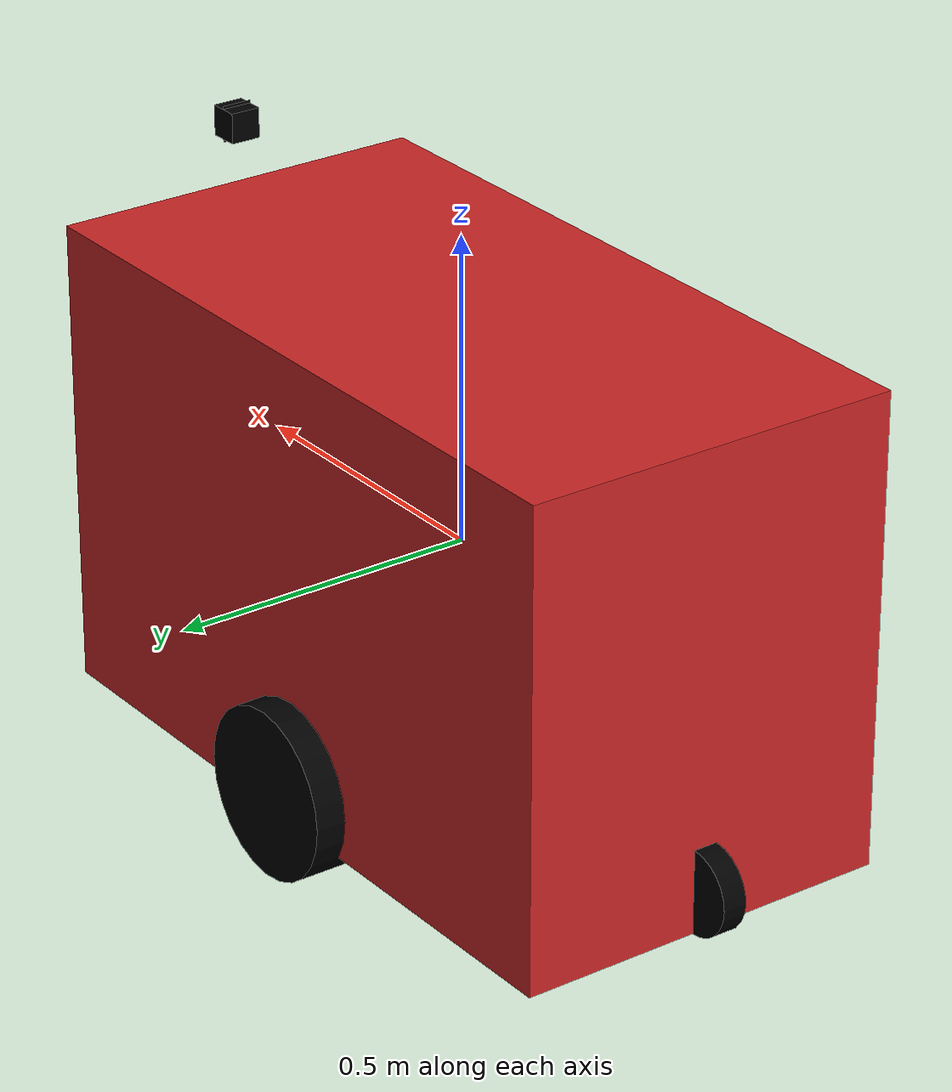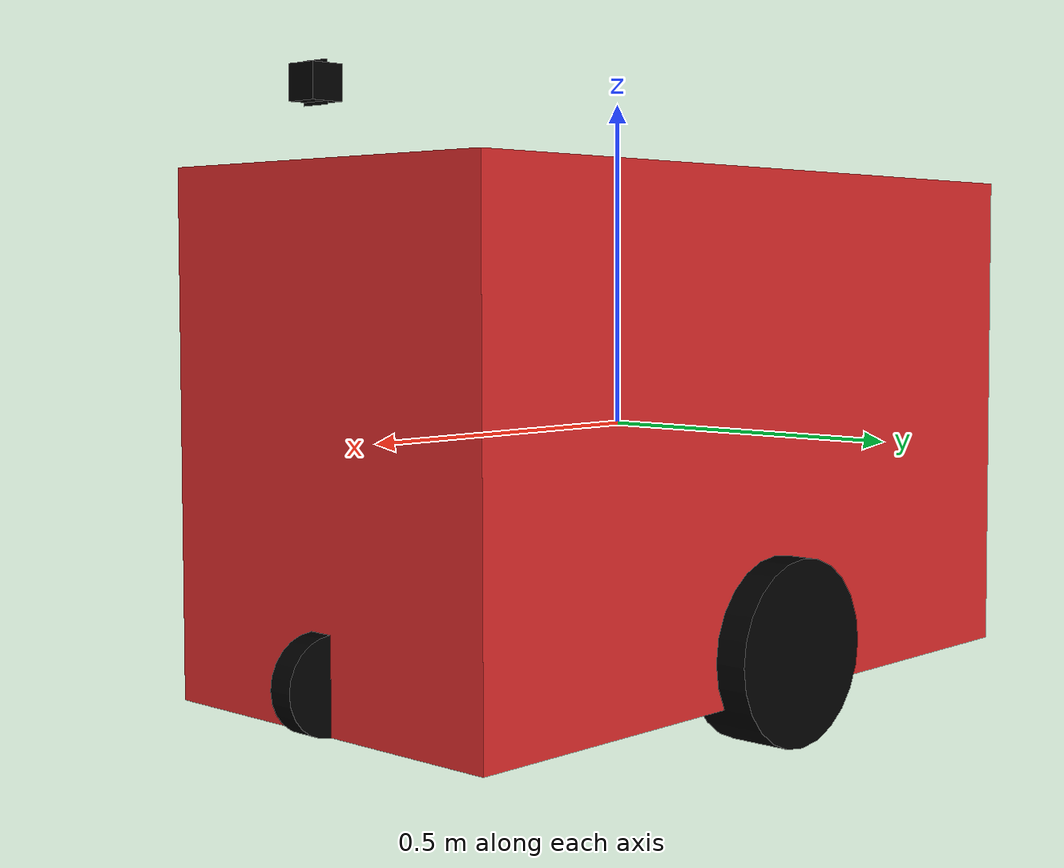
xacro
<?xml version="1.0"?>
<robot name="robobox" xmlns:xacro="http://www.ros.org/wiki/xacro">

    <xacro:property name="width" value="0.63" />
    <xacro:property name="length" value="1.2" />
    <xacro:property name="height" value="0.778" />
    <xacro:property name="pi" value="3.1415" />
    <xacro:property name="small_wheel_radius" value="0.07" />
    <xacro:property name="small_wheel_length" value="0.04" />
    <xacro:property name="big_wheel_radius" value="0.14" />
    <xacro:property name="big_wheel_length" value="0.1" />
    <xacro:property name="camera_size" value="0.05" />

    <material name="black">
        <color rgba="0 0 0 1" />
    </material>

    <xacro:macro name="default_inertial" params="mass">
        <inertial>
            <mass value="${mass}" />
            <origin xyz=" 0 0 0"/>
            <inertia ixx="1.0" ixy="0.0" ixz="0.0" iyy="1.0" iyz="0.0" izz="1.0" />
        </inertial>
    </xacro:macro>

    <xacro:macro name="wheel" params="prefix suffix ratio_x ratio_y offset_z wheel_radius wheel_length joint_type">
        <link name="${prefix}_${suffix}_wheel">
            <visual>
                <origin xyz="0 0 0" rpy="0 ${pi/2} ${pi/2}" />
                <geometry>
                    <cylinder radius="${wheel_radius}" length="${wheel_length}" />
                </geometry>
                <material name="black" />
            </visual>
            <collision>
                <origin xyz="0 0 0" rpy="0 ${pi/2} ${pi/2}" />
                <geometry>
                    <cylinder radius="${wheel_radius}" length="${wheel_length}" />
                </geometry>
            </collision>
            <xacro:default_inertial mass="0.01" />
        </link>
        <joint name="${prefix}_${suffix}_wheel_joint" type="${joint_type}">
            <axis xyz="0 1 0" />
            <parent link="base_link" />
            <child link="${prefix}_${suffix}_wheel" />
            <origin xyz="${length * ratio_x} ${width * ratio_y} -${height/2 + offset_z}" rpy="0 0 0" />
        </joint>
    </xacro:macro>

    <xacro:macro name="small_wheel" params="prefix suffix ratio_x">
        <xacro:wheel prefix="${prefix}" suffix="${suffix}" ratio_x="${ratio_x}" ratio_y="0" offset_z="-${small_wheel_radius}" wheel_radius="${small_wheel_radius}" wheel_length="${small_wheel_length}" joint_type="fixed"/>
    </xacro:macro>

    <xacro:macro name="big_wheel" params="prefix suffix ratio_y">
        <xacro:wheel prefix="${prefix}" suffix="${suffix}" ratio_x="0" ratio_y="${ratio_y}" offset_z="-${big_wheel_radius / 2}" wheel_radius="${big_wheel_radius}" wheel_length="${big_wheel_length}" joint_type="continuous"/>
    </xacro:macro>

    <link name="base_link">
        <visual>
            <geometry>
                <box size="${length} ${width} ${height}" />
            </geometry>
        </visual>
        <collision>
            <geometry>
                <box size="${length} ${width} ${height}" />
            </geometry>
        </collision>
        <xacro:default_inertial mass="100" />
        <gazebo reference="base_link">
            <material>Gazebo/Red</material>
        </gazebo>
    </link>

    <link name="base_footprint">
        <visual>
          <geometry>
             <box size="0.001 0.001 0.001"/>
          </geometry>
          <origin rpy="0 0 0" xyz="0 0 0"/>
        </visual>
        <inertial>
          <mass value="0.0001"/>
          <inertia ixx="1.0" ixy="0.0" ixz="0.0" iyy="1.0" iyz="0.0" izz="1.0"/>
        </inertial>
    </link>
    <gazebo reference="base_footprint">
        <material>Gazebo/Blue</material>
    </gazebo>
    <joint name="base_footprint_joint" type="fixed">
        <origin xyz="0 0 0" />
        <parent link="base_footprint" />
        <child link="base_link" />
    </joint>

    <xacro:small_wheel prefix="front" suffix="mid" ratio_x="0.5" />
    <xacro:small_wheel prefix="back" suffix="mid" ratio_x="-0.5" />

    <xacro:big_wheel prefix="mid" suffix="left" ratio_y="0.5" />
    <xacro:big_wheel prefix="mid" suffix="right" ratio_y="-0.5" />

  <!-- Camera -->
  <joint name="camera_joint" type="fixed">
    <axis xyz="0 1 0" />
    <origin xyz="${length/2} 0 ${height/2 + 0.1}" rpy="0 0 0"/>
    <parent link="base_link"/>
    <child link="camera_link"/>
  </joint>

  <link name="camera_link">
    <collision>
      <origin xyz="0 0 0" rpy="0 0 0"/>
      <geometry>
    <box size="${camera_size} ${camera_size} ${camera_size}"/>
      </geometry>
    </collision>

    <visual>
      <origin xyz="0 0 0" rpy="0 0 0"/>
      <geometry>
         <box size="${camera_size} ${camera_size} ${camera_size}"/>
      </geometry>
      <material name="black"/>
    </visual>

    <inertial>
      <mass value="1e-5" />
      <origin xyz="0 0 0" rpy="0 0 0"/>
      <inertia ixx="1e-6" ixy="0" ixz="0" iyy="1e-6" iyz="0" izz="1e-6" />
    </inertial>
  </link>

  <gazebo reference="camera_link">
    <sensor type="camera" name="front_camera">
      <update_rate>30.0</update_rate>
      <camera name="head">
        <horizontal_fov>1.3962634</horizontal_fov>
        <image>
          <width>800</width>
          <height>800</height>
          <format>R8G8B8</format>
        </image>
        <clip>
          <near>0.02</near>
          <far>300</far>
        </clip>
        <noise>
          <type>gaussian</type>
          <mean>0.0</mean>
          <stddev>0.007</stddev>
        </noise>
      </camera>
      <plugin name="camera_controller" filename="libgazebo_ros_camera.so">
        <alwaysOn>true</alwaysOn>
        <updateRate>0.0</updateRate>
        <cameraName>robobox/front_camera</cameraName>
        <imageTopicName>image_raw</imageTopicName>
        <cameraInfoTopicName>camera_info</cameraInfoTopicName>
        <frameName>camera_link</frameName>
        <hackBaseline>0.07</hackBaseline>
        <distortionK1>0.0</distortionK1>
        <distortionK2>0.0</distortionK2>
        <distortionK3>0.0</distortionK3>
        <distortionT1>0.0</distortionT1>
        <distortionT2>0.0</distortionT2>
      </plugin>
    </sensor>
  </gazebo>

<!-- Hokuyo LIDAR for simulation -->
  <xacro:macro name="hokuyo_laser">
    <gazebo reference="base_laser_link">
      <sensor type="ray" name="laser">
        <pose>0 0 0 0 0 0</pose>
        <visualize>true</visualize>
        <update_rate>40</update_rate>
        <ray>
          <scan>
            <horizontal>
              <samples>720</samples>
              <resolution>1</resolution>
              <min_angle>-3.1415</min_angle>
              <max_angle>3.1415</max_angle>
            </horizontal>
          </scan>
          <range>
            <min>0.10</min>
            <max>30.0</max>
            <resolution>0.01</resolution>
          </range>
          <noise>
            <type>Gaussian</type>
            <mean>0.0</mean>
            <stddev>0.01</stddev>
          </noise>
        </ray>
        <plugin name="hokuyo_node" filename="libgazebo_ros_laser.so">
          <topicName>/robobox/laser/scan</topicName>
          <frameName>base_laser_link</frameName>
        </plugin>
      </sensor>
    </gazebo>
  </xacro:macro>

  <xacro:macro name="sensor_hokuyo">
    <joint name="laser" type="fixed">
      <origin xyz="${length/2} 0 ${height/2+0.1}" rpy="0 0 0"/>
      <!--origin xyz="0.15 0.0 0.360" rpy="3.14159 0.0 0.0" /-->
      <parent link="base_link" />
      <child link="base_laser_link" />
    </joint>

    <link name="base_laser_link">
      <visual>
        <geometry>
          <box size="0.00 0.05 0.06" />
        </geometry>
        <material name="black" />
      </visual>
      <inertial>
        <mass value="0.000001" />
        <origin xyz="0 0 0" />
        <inertia ixx="0.0001" ixy="0.0" ixz="0.0"
          iyy="0.0001" iyz="0.0"
          izz="0.0001" />
      </inertial>
    </link>

    <!-- Set up laser gazebo details -->
    <hokuyo_laser />
  </xacro:macro>

    <sensor_hokuyo />

</robot>
